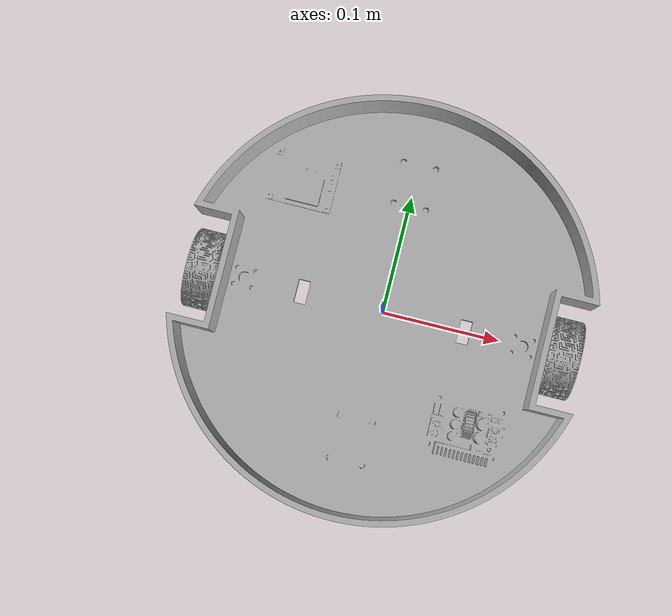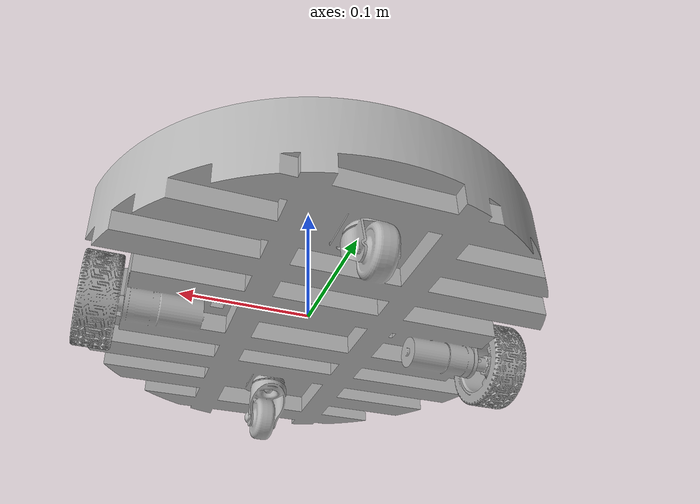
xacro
<?xml version="1.0" ?>
<robot name="ROS_Tang1_final" xmlns:xacro="http://www.ros.org/wiki/xacro">

<xacro:include filename="$(find my_bot)/description/urdf/materials.xacro" />
<xacro:include filename="$(find my_bot)/description/urdf/ROS_Tang1_final.trans" />
<xacro:include filename="$(find my_bot)/description/urdf/ROS_Tang1_final.gazebo" />
<link name="base_footprint"/>

<joint name="base_footprint_joint" type="fixed">
  <parent link="base_footprint"/>
  <child link="base_link"/>
  <origin xyz="0 0 0" rpy="0 0 0"/>
</joint>

<link name="base_link">
  <inertial>
    <origin xyz="0.0012026424535581776 -0.0010662714494926997 0.0002842384762189825" rpy="0 0 0"/>
    <mass value="11.884225346705621"/>
    <inertia ixx="0.110664" iyy="0.092428" izz="0.19831" ixy="0.001764" iyz="0.000303" ixz="-0.00033"/>
  </inertial>
  <visual>
    <origin xyz="0 0 0" rpy="0 0 0"/>
    <geometry>
      <mesh filename="package://my_bot/description/meshes/base_link.stl" scale="0.001 0.001 0.001"/>
    </geometry>
    <material name="silver"/>
  </visual>
  <collision>
    <origin xyz="0 0 0" rpy="0 0 0"/>
    <geometry>
      <mesh filename="package://my_bot/description/meshes/base_link.stl" scale="0.001 0.001 0.001"/>
    </geometry>
  </collision>
</link>

<link name="left_wheel_1">
  <inertial>
    <origin xyz="0.00900299562560855 -6.569201814043014e-08 -7.304924345485214e-06" rpy="0 0 0"/>
    <mass value="0.27179697181120227"/>
    <inertia ixx="0.0002" iyy="0.000119" izz="0.000119" ixy="-0.0" iyz="0.0" ixz="0.0"/>
  </inertial>
  <visual>
    <origin xyz="-0.146193 -0.000127 0.016714" rpy="0 0 0"/>
    <geometry>
      <mesh filename="package://my_bot/description/meshes/left_wheel_1.stl" scale="0.001 0.001 0.001"/>
    </geometry>
    <material name="silver"/>
  </visual>
  <collision>
    <origin xyz="-0.146193 -0.000127 0.016714" rpy="0 0 0"/>
    <geometry>
      <mesh filename="package://my_bot/description/meshes/left_wheel_1.stl" scale="0.001 0.001 0.001"/>
    </geometry>
  </collision>
</link>

<link name="right_wheel_1">
  <inertial>
    <origin xyz="-0.009002878515108809 2.5061417178266483e-07 -7.087614676357795e-06" rpy="0 0 0"/>
    <mass value="0.2717969718112589"/>
    <inertia ixx="0.0002" iyy="0.000119" izz="0.000119" ixy="-0.0" iyz="-0.0" ixz="-0.0"/>
  </inertial>
  <visual>
    <origin xyz="0.146354 4.2e-05 0.016913" rpy="0 0 0"/>
    <geometry>
      <mesh filename="package://my_bot/description/meshes/right_wheel_1.stl" scale="0.001 0.001 0.001"/>
    </geometry>
    <material name="silver"/>
  </visual>
  <collision>
    <origin xyz="0.146354 4.2e-05 0.016913" rpy="0 0 0"/>
    <geometry>
      <mesh filename="package://my_bot/description/meshes/right_wheel_1.stl" scale="0.001 0.001 0.001"/>
    </geometry>
  </collision>
</link>

<joint name="left_wheel_joint" type="continuous">
  <origin xyz="0.146193 0.000127 -0.016714" rpy="0 0 0"/>
  <parent link="base_link"/>
  <child link="left_wheel_1"/>
  <axis xyz="1.0 0.0 0.0"/>
</joint>

<joint name="right_wheel_joint" type="continuous">
  <origin xyz="-0.146354 -4.2e-05 -0.016913" rpy="0 0 0"/>
  <parent link="base_link"/>
  <child link="right_wheel_1"/>
  <axis xyz="1.0 0.0 0.0"/>
</joint>

</robot>

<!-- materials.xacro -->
<robot name="ROS_Tang1_final" xmlns:xacro="http://www.ros.org/wiki/xacro" >

<material name="silver">
  <color rgba="0.700 0.700 0.700 1.000"/>
</material>

</robot>
